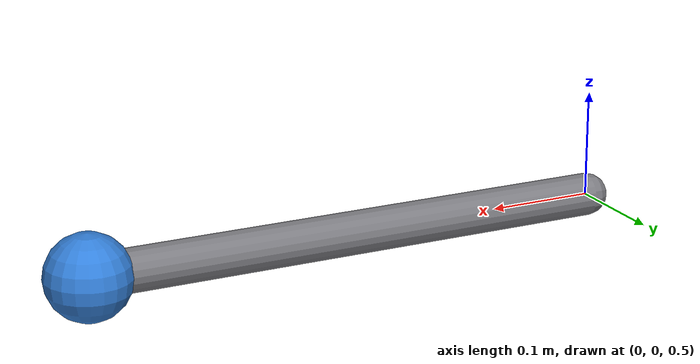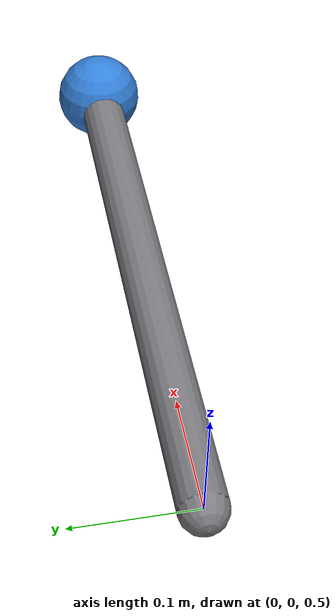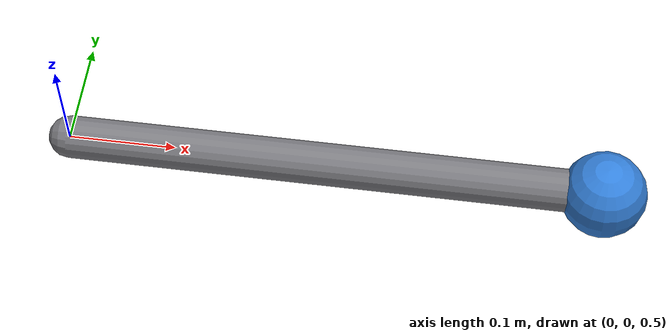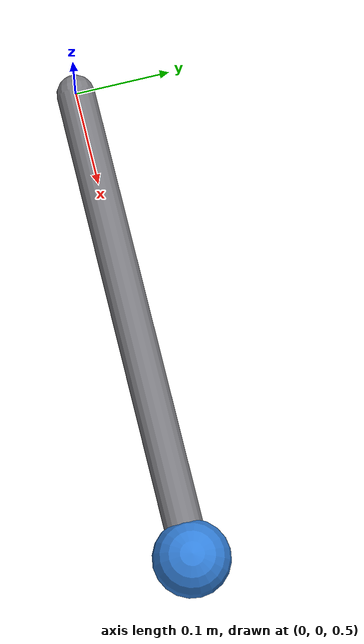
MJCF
<mujoco model="frame-velocity">
    <compiler angle="radian"/>
    <option gravity="0 0 -9.81" timestep="0.001">
        <flag energy="enable"/>
    </option>

    <default>
        <geom contype="0" conaffinity="0"/>
    </default>

    <worldbody>
        <body name="rod" pos="0 0 0.5">
            <joint name="hinge" type="hinge" axis="0 0 1" damping="0"/>
            <geom name="shaft" type="capsule" size="0.02"
                  fromto="0 0 0 0.5 0 0" rgba="0.48 0.48 0.50 1"/>
            <geom name="tip_ball" type="sphere" size="0.04"
                  pos="0.5 0 0" rgba="0.2 0.5 0.85 1"/>
            <site name="tip" pos="0.5 0 0"/>
        </body>
    </worldbody>

    <actuator>
        <velocity name="motor" joint="hinge" kv="100"/>
    </actuator>

    <sensor>
        <framelinvel name="tip_linvel" objtype="site" objname="tip"/>
        <frameangvel name="tip_angvel" objtype="site" objname="tip"/>
    </sensor>
</mujoco>
